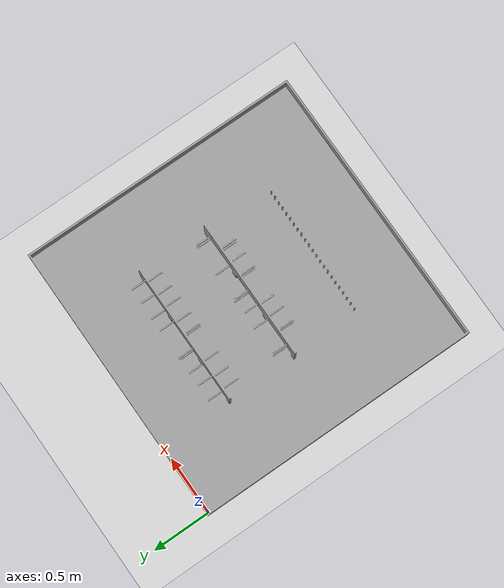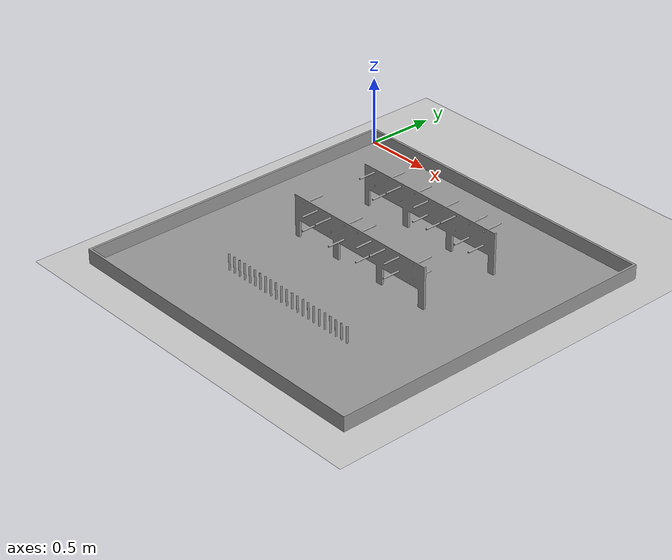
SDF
<sdf version="1.7">
 <world name="default">
  <light name="sun" type="directional">
   <pose>0 0 10 0 -0 0</pose>
   <diffuse>0.8 0.8 0.8 1</diffuse>
   <specular>0.2 0.2 0.2 1</specular>
   <attenuation>
    <range>1000</range>
    <constant>0.9</constant>
    <linear>0.01</linear>
    <quadratic>0.001</quadratic>
   </attenuation>
   <direction>-0.5 0.1 -0.9</direction>
   <spot><inner_angle>0</inner_angle><outer_angle>0</outer_angle><falloff>0</falloff></spot>
  </light>
  <model name="ground_plane">
   <static>1</static>
   <link name="link">
    <collision name="collision">
     <geometry><plane><normal>0 0 1</normal><size>100 100</size></plane></geometry>
     <surface><friction><ode><mu>100</mu><mu2>50</mu2></ode></friction></surface>
    </collision>
    <visual name="visual">
     <cast_shadows>0</cast_shadows>
     <geometry><plane><normal>0 0 1</normal><size>100 100</size></plane></geometry>
     <material>
      <script><uri>file://media/materials/scripts/gazebo.material</uri><name>Gazebo/Grey</name></script>
     </material>
    </visual>
   </link>
  </model>
  <gravity>0 0 -9.8</gravity>
  <magnetic_field>6e-06 2.3e-05 -4.2e-05</magnetic_field>
  <atmosphere type="adiabatic"/>
  <physics type="ode">
   <max_step_size>0.001</max_step_size>
   <real_time_factor>1</real_time_factor>
   <real_time_update_rate>1000</real_time_update_rate>
  </physics>
  <scene><ambient>0.4 0.4 0.4 1</ambient><background>0.7 0.7 0.7 1</background><shadows>1</shadows></scene>
  <audio><device>default</device></audio>
  <spherical_coordinates>
   <surface_model>EARTH_WGS84</surface_model>
   <latitude_deg>0</latitude_deg>
   <longitude_deg>0</longitude_deg>
   <elevation>0</elevation>
   <heading_deg>0</heading_deg>
  </spherical_coordinates>
  <model name="competition_board">
   <link name="link_0">
    <pose>0 0 0.0001 0 -0 0</pose>
    <inertial>
     <mass>1e-08</mass>
     <inertia>
      <ixx>0.166667</ixx>
      <ixy>0</ixy>
      <ixz>0</ixz>
      <iyy>0.166667</iyy>
      <iyz>0</iyz>
      <izz>0.166667</izz>
     </inertia>
    </inertial>
    <visual name="visual">
     <geometry>
      <mesh><uri>model://competition_board/mesh/competition_board.stl</uri><scale>1 1 1</scale></mesh>
     </geometry>
     <material>
      <lighting>1</lighting>
      <script><uri>file://media/materials/scripts/gazebo.material</uri><name>Gazebo/Grey</name></script>
      <ambient>0.3 0.3 0.3 1</ambient>
      <diffuse>0.7 0.7 0.7 1</diffuse>
      <specular>0.01 1 0.01 1</specular>
      <emissive>0.5607 0.4627 0.349 1</emissive>
      <shader type="vertex"><normal_map>__default__</normal_map></shader>
     </material>
    </visual>
    <collision name="collision">
     <geometry><mesh><uri>model://competition_board/mesh/competition_board.stl</uri></mesh></geometry>
     <surface><contact><ode><max_vel>0.1</max_vel><min_depth>0.001</min_depth></ode></contact></surface>
    </collision>
   </link>
   <static>1</static>
  </model>
 </world>
</sdf>
